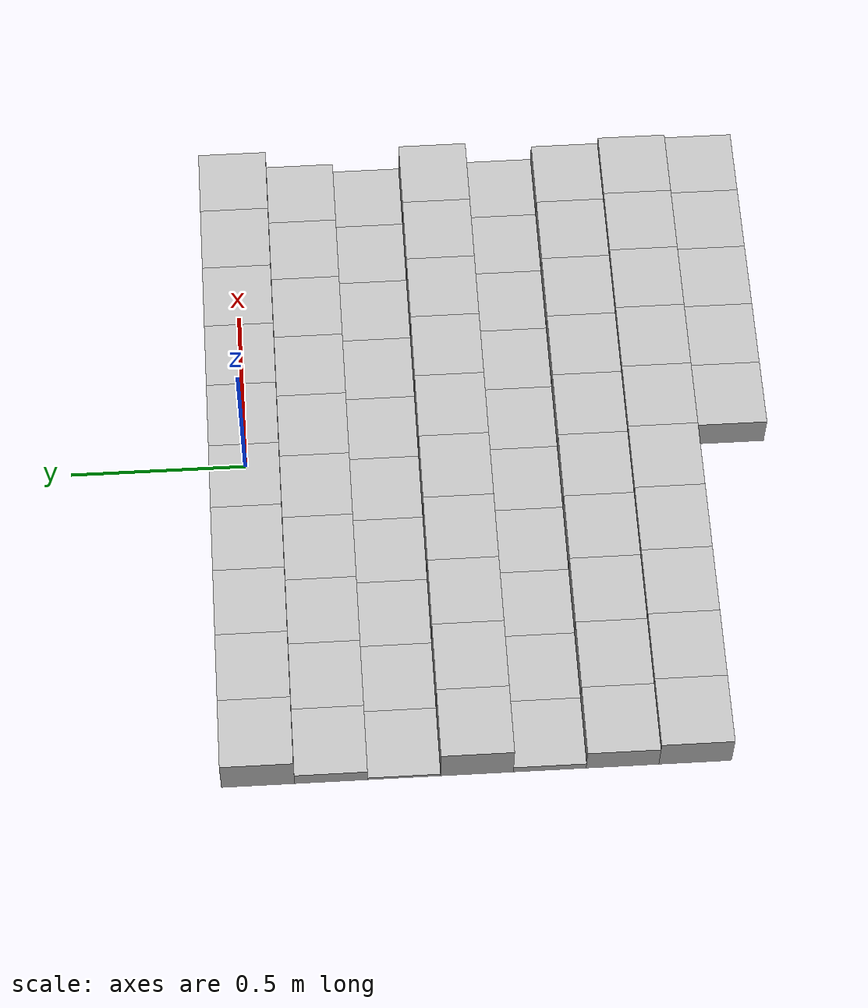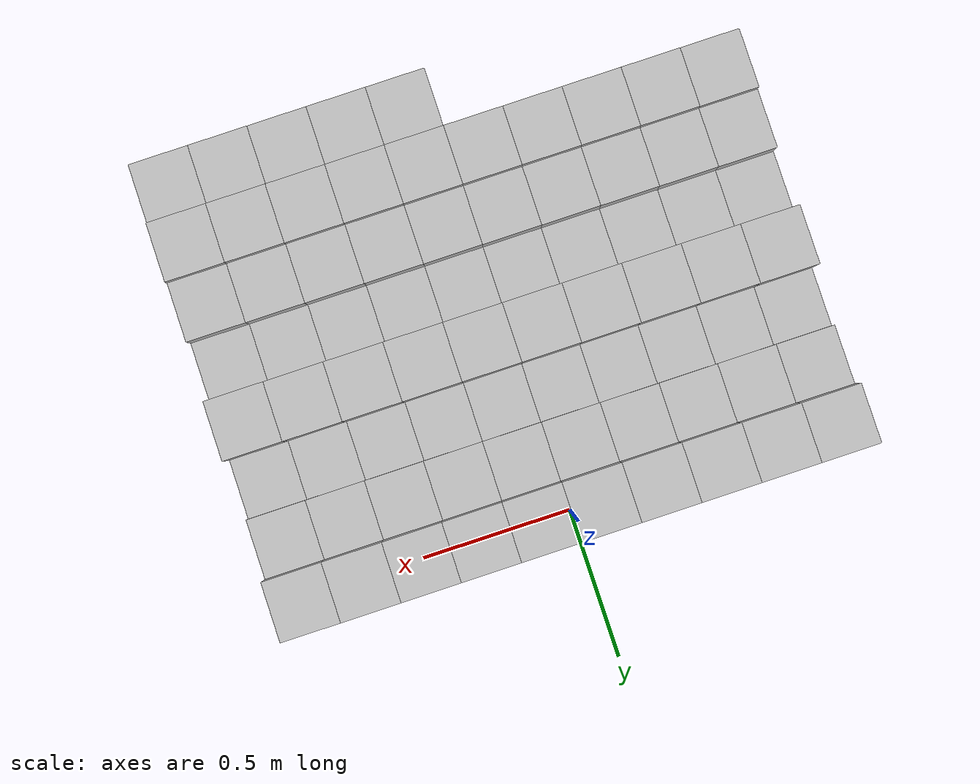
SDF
<sdf version="1.6">
 <model name="Terrain">
  <static>true</static>
  <link name="box_0_0">
   <pose>-0.9 0.0 0.0659234371377 0 0 0</pose>
   <inertial>
    <mass>1.0</mass>
    <inertia><ixx>0.0</ixx><ixy>0.0</ixy><ixz>0.0</ixz><iyy>0.0</iyy><iyz>0.0</iyz><izz>0.0</izz></inertia>
   </inertial>
   <collision name="collision"><geometry><box><size>0.2 0.2 0.131846874275</size></box></geometry></collision>
   <visual name="visual"><geometry><box><size>0.2 0.2 0.131846874275</size></box></geometry></visual>
  </link>
  <link name="box_0_1">
   <pose>-0.7 0.0 0.0659234371377 0 0 0</pose>
   <inertial>
    <mass>1.0</mass>
    <inertia><ixx>0.0</ixx><ixy>0.0</ixy><ixz>0.0</ixz><iyy>0.0</iyy><iyz>0.0</iyz><izz>0.0</izz></inertia>
   </inertial>
   <collision name="collision"><geometry><box><size>0.2 0.2 0.131846874275</size></box></geometry></collision>
   <visual name="visual"><geometry><box><size>0.2 0.2 0.131846874275</size></box></geometry></visual>
  </link>
  <link name="box_0_2">
   <pose>-0.5 0.0 0.0659234371377 0 0 0</pose>
   <inertial>
    <mass>1.0</mass>
    <inertia><ixx>0.0</ixx><ixy>0.0</ixy><ixz>0.0</ixz><iyy>0.0</iyy><iyz>0.0</iyz><izz>0.0</izz></inertia>
   </inertial>
   <collision name="collision"><geometry><box><size>0.2 0.2 0.131846874275</size></box></geometry></collision>
   <visual name="visual"><geometry><box><size>0.2 0.2 0.131846874275</size></box></geometry></visual>
  </link>
  <link name="box_0_3">
   <pose>-0.3 0.0 0.0659234371377 0 0 0</pose>
   <inertial>
    <mass>1.0</mass>
    <inertia><ixx>0.0</ixx><ixy>0.0</ixy><ixz>0.0</ixz><iyy>0.0</iyy><iyz>0.0</iyz><izz>0.0</izz></inertia>
   </inertial>
   <collision name="collision"><geometry><box><size>0.2 0.2 0.131846874275</size></box></geometry></collision>
   <visual name="visual"><geometry><box><size>0.2 0.2 0.131846874275</size></box></geometry></visual>
  </link>
  <link name="box_0_4">
   <pose>-0.1 0.0 0.0659234371377 0 0 0</pose>
   <inertial>
    <mass>1.0</mass>
    <inertia><ixx>0.0</ixx><ixy>0.0</ixy><ixz>0.0</ixz><iyy>0.0</iyy><iyz>0.0</iyz><izz>0.0</izz></inertia>
   </inertial>
   <collision name="collision"><geometry><box><size>0.2 0.2 0.131846874275</size></box></geometry></collision>
   <visual name="visual"><geometry><box><size>0.2 0.2 0.131846874275</size></box></geometry></visual>
  </link>
  <link name="box_0_5">
   <pose>0.1 0.0 0.0659234371377 0 0 0</pose>
   <inertial>
    <mass>1.0</mass>
    <inertia><ixx>0.0</ixx><ixy>0.0</ixy><ixz>0.0</ixz><iyy>0.0</iyy><iyz>0.0</iyz><izz>0.0</izz></inertia>
   </inertial>
   <collision name="collision"><geometry><box><size>0.2 0.2 0.131846874275</size></box></geometry></collision>
   <visual name="visual"><geometry><box><size>0.2 0.2 0.131846874275</size></box></geometry></visual>
  </link>
  <link name="box_0_6">
   <pose>0.3 0.0 0.0659234371377 0 0 0</pose>
   <inertial>
    <mass>1.0</mass>
    <inertia><ixx>0.0</ixx><ixy>0.0</ixy><ixz>0.0</ixz><iyy>0.0</iyy><iyz>0.0</iyz><izz>0.0</izz></inertia>
   </inertial>
   <collision name="collision"><geometry><box><size>0.2 0.2 0.131846874275</size></box></geometry></collision>
   <visual name="visual"><geometry><box><size>0.2 0.2 0.131846874275</size></box></geometry></visual>
  </link>
  <link name="box_0_7">
   <pose>0.5 0.0 0.0659234371377 0 0 0</pose>
   <inertial>
    <mass>1.0</mass>
    <inertia><ixx>0.0</ixx><ixy>0.0</ixy><ixz>0.0</ixz><iyy>0.0</iyy><iyz>0.0</iyz><izz>0.0</izz></inertia>
   </inertial>
   <collision name="collision"><geometry><box><size>0.2 0.2 0.131846874275</size></box></geometry></collision>
   <visual name="visual"><geometry><box><size>0.2 0.2 0.131846874275</size></box></geometry></visual>
  </link>
  <link name="box_0_8">
   <pose>0.7 0.0 0.0659234371377 0 0 0</pose>
   <inertial>
    <mass>1.0</mass>
    <inertia><ixx>0.0</ixx><ixy>0.0</ixy><ixz>0.0</ixz><iyy>0.0</iyy><iyz>0.0</iyz><izz>0.0</izz></inertia>
   </inertial>
   <collision name="collision"><geometry><box><size>0.2 0.2 0.131846874275</size></box></geometry></collision>
   <visual name="visual"><geometry><box><size>0.2 0.2 0.131846874275</size></box></geometry></visual>
  </link>
  <link name="box_0_9">
   <pose>0.9 0.0 0.0659234371377 0 0 0</pose>
   <inertial>
    <mass>1.0</mass>
    <inertia><ixx>0.0</ixx><ixy>0.0</ixy><ixz>0.0</ixz><iyy>0.0</iyy><iyz>0.0</iyz><izz>0.0</izz></inertia>
   </inertial>
   <collision name="collision"><geometry><box><size>0.2 0.2 0.131846874275</size></box></geometry></collision>
   <visual name="visual"><geometry><box><size>0.2 0.2 0.131846874275</size></box></geometry></visual>
  </link>
  <link name="box_1_0">
   <pose>-0.9 -0.2 0.0256447569967 0 0 0</pose>
   <inertial>
    <mass>1.0</mass>
    <inertia><ixx>0.0</ixx><ixy>0.0</ixy><ixz>0.0</ixz><iyy>0.0</iyy><iyz>0.0</iyz><izz>0.0</izz></inertia>
   </inertial>
   <collision name="collision"><geometry><box><size>0.2 0.2 0.0512895139934</size></box></geometry></collision>
   <visual name="visual"><geometry><box><size>0.2 0.2 0.0512895139934</size></box></geometry></visual>
  </link>
  <link name="box_1_1">
   <pose>-0.7 -0.2 0.0256447569967 0 0 0</pose>
   <inertial>
    <mass>1.0</mass>
    <inertia><ixx>0.0</ixx><ixy>0.0</ixy><ixz>0.0</ixz><iyy>0.0</iyy><iyz>0.0</iyz><izz>0.0</izz></inertia>
   </inertial>
   <collision name="collision"><geometry><box><size>0.2 0.2 0.0512895139934</size></box></geometry></collision>
   <visual name="visual"><geometry><box><size>0.2 0.2 0.0512895139934</size></box></geometry></visual>
  </link>
  <link name="box_1_2">
   <pose>-0.5 -0.2 0.0256447569967 0 0 0</pose>
   <inertial>
    <mass>1.0</mass>
    <inertia><ixx>0.0</ixx><ixy>0.0</ixy><ixz>0.0</ixz><iyy>0.0</iyy><iyz>0.0</iyz><izz>0.0</izz></inertia>
   </inertial>
   <collision name="collision"><geometry><box><size>0.2 0.2 0.0512895139934</size></box></geometry></collision>
   <visual name="visual"><geometry><box><size>0.2 0.2 0.0512895139934</size></box></geometry></visual>
  </link>
  <link name="box_1_3">
   <pose>-0.3 -0.2 0.0256447569967 0 0 0</pose>
   <inertial>
    <mass>1.0</mass>
    <inertia><ixx>0.0</ixx><ixy>0.0</ixy><ixz>0.0</ixz><iyy>0.0</iyy><iyz>0.0</iyz><izz>0.0</izz></inertia>
   </inertial>
   <collision name="collision"><geometry><box><size>0.2 0.2 0.0512895139934</size></box></geometry></collision>
   <visual name="visual"><geometry><box><size>0.2 0.2 0.0512895139934</size></box></geometry></visual>
  </link>
  <link name="box_1_4">
   <pose>-0.1 -0.2 0.0256447569967 0 0 0</pose>
   <inertial>
    <mass>1.0</mass>
    <inertia><ixx>0.0</ixx><ixy>0.0</ixy><ixz>0.0</ixz><iyy>0.0</iyy><iyz>0.0</iyz><izz>0.0</izz></inertia>
   </inertial>
   <collision name="collision"><geometry><box><size>0.2 0.2 0.0512895139934</size></box></geometry></collision>
   <visual name="visual"><geometry><box><size>0.2 0.2 0.0512895139934</size></box></geometry></visual>
  </link>
  <link name="box_1_5">
   <pose>0.1 -0.2 0.0256447569967 0 0 0</pose>
   <inertial>
    <mass>1.0</mass>
    <inertia><ixx>0.0</ixx><ixy>0.0</ixy><ixz>0.0</ixz><iyy>0.0</iyy><iyz>0.0</iyz><izz>0.0</izz></inertia>
   </inertial>
   <collision name="collision"><geometry><box><size>0.2 0.2 0.0512895139934</size></box></geometry></collision>
   <visual name="visual"><geometry><box><size>0.2 0.2 0.0512895139934</size></box></geometry></visual>
  </link>
  <link name="box_1_6">
   <pose>0.3 -0.2 0.0256447569967 0 0 0</pose>
   <inertial>
    <mass>1.0</mass>
    <inertia><ixx>0.0</ixx><ixy>0.0</ixy><ixz>0.0</ixz><iyy>0.0</iyy><iyz>0.0</iyz><izz>0.0</izz></inertia>
   </inertial>
   <collision name="collision"><geometry><box><size>0.2 0.2 0.0512895139934</size></box></geometry></collision>
   <visual name="visual"><geometry><box><size>0.2 0.2 0.0512895139934</size></box></geometry></visual>
  </link>
  <link name="box_1_7">
   <pose>0.5 -0.2 0.0256447569967 0 0 0</pose>
   <inertial>
    <mass>1.0</mass>
    <inertia><ixx>0.0</ixx><ixy>0.0</ixy><ixz>0.0</ixz><iyy>0.0</iyy><iyz>0.0</iyz><izz>0.0</izz></inertia>
   </inertial>
   <collision name="collision"><geometry><box><size>0.2 0.2 0.0512895139934</size></box></geometry></collision>
   <visual name="visual"><geometry><box><size>0.2 0.2 0.0512895139934</size></box></geometry></visual>
  </link>
  <link name="box_1_8">
   <pose>0.7 -0.2 0.0256447569967 0 0 0</pose>
   <inertial>
    <mass>1.0</mass>
    <inertia><ixx>0.0</ixx><ixy>0.0</ixy><ixz>0.0</ixz><iyy>0.0</iyy><iyz>0.0</iyz><izz>0.0</izz></inertia>
   </inertial>
   <collision name="collision"><geometry><box><size>0.2 0.2 0.0512895139934</size></box></geometry></collision>
   <visual name="visual"><geometry><box><size>0.2 0.2 0.0512895139934</size></box></geometry></visual>
  </link>
  <link name="box_1_9">
   <pose>0.9 -0.2 0.0256447569967 0 0 0</pose>
   <inertial>
    <mass>1.0</mass>
    <inertia><ixx>0.0</ixx><ixy>0.0</ixy><ixz>0.0</ixz><iyy>0.0</iyy><iyz>0.0</iyz><izz>0.0</izz></inertia>
   </inertial>
   <collision name="collision"><geometry><box><size>0.2 0.2 0.0512895139934</size></box></geometry></collision>
   <visual name="visual"><geometry><box><size>0.2 0.2 0.0512895139934</size></box></geometry></visual>
  </link>
  <link name="box_2_0">
   <pose>-0.9 -0.4 0.0053083939755 0 0 0</pose>
   <inertial>
    <mass>1.0</mass>
    <inertia><ixx>0.0</ixx><ixy>0.0</ixy><ixz>0.0</ixz><iyy>0.0</iyy><iyz>0.0</iyz><izz>0.0</izz></inertia>
   </inertial>
   <collision name="collision"><geometry><box><size>0.2 0.2 0.010616787951</size></box></geometry></collision>
   <visual name="visual"><geometry><box><size>0.2 0.2 0.010616787951</size></box></geometry></visual>
  </link>
  <link name="box_2_1">
   <pose>-0.7 -0.4 0.0053083939755 0 0 0</pose>
   <inertial>
    <mass>1.0</mass>
    <inertia><ixx>0.0</ixx><ixy>0.0</ixy><ixz>0.0</ixz><iyy>0.0</iyy><iyz>0.0</iyz><izz>0.0</izz></inertia>
   </inertial>
   <collision name="collision"><geometry><box><size>0.2 0.2 0.010616787951</size></box></geometry></collision>
   <visual name="visual"><geometry><box><size>0.2 0.2 0.010616787951</size></box></geometry></visual>
  </link>
  <link name="box_2_2">
   <pose>-0.5 -0.4 0.0053083939755 0 0 0</pose>
   <inertial>
    <mass>1.0</mass>
    <inertia><ixx>0.0</ixx><ixy>0.0</ixy><ixz>0.0</ixz><iyy>0.0</iyy><iyz>0.0</iyz><izz>0.0</izz></inertia>
   </inertial>
   <collision name="collision"><geometry><box><size>0.2 0.2 0.010616787951</size></box></geometry></collision>
   <visual name="visual"><geometry><box><size>0.2 0.2 0.010616787951</size></box></geometry></visual>
  </link>
  <link name="box_2_3">
   <pose>-0.3 -0.4 0.0053083939755 0 0 0</pose>
   <inertial>
    <mass>1.0</mass>
    <inertia><ixx>0.0</ixx><ixy>0.0</ixy><ixz>0.0</ixz><iyy>0.0</iyy><iyz>0.0</iyz><izz>0.0</izz></inertia>
   </inertial>
   <collision name="collision"><geometry><box><size>0.2 0.2 0.010616787951</size></box></geometry></collision>
   <visual name="visual"><geometry><box><size>0.2 0.2 0.010616787951</size></box></geometry></visual>
  </link>
  <link name="box_2_4">
   <pose>-0.1 -0.4 0.0053083939755 0 0 0</pose>
   <inertial>
    <mass>1.0</mass>
    <inertia><ixx>0.0</ixx><ixy>0.0</ixy><ixz>0.0</ixz><iyy>0.0</iyy><iyz>0.0</iyz><izz>0.0</izz></inertia>
   </inertial>
   <collision name="collision"><geometry><box><size>0.2 0.2 0.010616787951</size></box></geometry></collision>
   <visual name="visual"><geometry><box><size>0.2 0.2 0.010616787951</size></box></geometry></visual>
  </link>
  <link name="box_2_5">
   <pose>0.1 -0.4 0.0053083939755 0 0 0</pose>
   <inertial>
    <mass>1.0</mass>
    <inertia><ixx>0.0</ixx><ixy>0.0</ixy><ixz>0.0</ixz><iyy>0.0</iyy><iyz>0.0</iyz><izz>0.0</izz></inertia>
   </inertial>
   <collision name="collision"><geometry><box><size>0.2 0.2 0.010616787951</size></box></geometry></collision>
   <visual name="visual"><geometry><box><size>0.2 0.2 0.010616787951</size></box></geometry></visual>
  </link>
  <link name="box_2_6">
   <pose>0.3 -0.4 0.0053083939755 0 0 0</pose>
   <inertial>
    <mass>1.0</mass>
    <inertia><ixx>0.0</ixx><ixy>0.0</ixy><ixz>0.0</ixz><iyy>0.0</iyy><iyz>0.0</iyz><izz>0.0</izz></inertia>
   </inertial>
   <collision name="collision"><geometry><box><size>0.2 0.2 0.010616787951</size></box></geometry></collision>
   <visual name="visual"><geometry><box><size>0.2 0.2 0.010616787951</size></box></geometry></visual>
  </link>
  <link name="box_2_7">
   <pose>0.5 -0.4 0.0053083939755 0 0 0</pose>
   <inertial>
    <mass>1.0</mass>
    <inertia><ixx>0.0</ixx><ixy>0.0</ixy><ixz>0.0</ixz><iyy>0.0</iyy><iyz>0.0</iyz><izz>0.0</izz></inertia>
   </inertial>
   <collision name="collision"><geometry><box><size>0.2 0.2 0.010616787951</size></box></geometry></collision>
   <visual name="visual"><geometry><box><size>0.2 0.2 0.010616787951</size></box></geometry></visual>
  </link>
  <link name="box_2_8">
   <pose>0.7 -0.4 0.0053083939755 0 0 0</pose>
   <inertial>
    <mass>1.0</mass>
    <inertia><ixx>0.0</ixx><ixy>0.0</ixy><ixz>0.0</ixz><iyy>0.0</iyy><iyz>0.0</iyz><izz>0.0</izz></inertia>
   </inertial>
   <collision name="collision"><geometry><box><size>0.2 0.2 0.010616787951</size></box></geometry></collision>
   <visual name="visual"><geometry><box><size>0.2 0.2 0.010616787951</size></box></geometry></visual>
  </link>
  <link name="box_2_9">
   <pose>0.9 -0.4 0.0053083939755 0 0 0</pose>
   <inertial>
    <mass>1.0</mass>
    <inertia><ixx>0.0</ixx><ixy>0.0</ixy><ixz>0.0</ixz><iyy>0.0</iyy><iyz>0.0</iyz><izz>0.0</izz></inertia>
   </inertial>
   <collision name="collision"><geometry><box><size>0.2 0.2 0.010616787951</size></box></geometry></collision>
   <visual name="visual"><geometry><box><size>0.2 0.2 0.010616787951</size></box></geometry></visual>
  </link>
  <link name="box_3_0">
   <pose>-0.9 -0.6 0.0641173235638 0 0 0</pose>
   <inertial>
    <mass>1.0</mass>
    <inertia><ixx>0.0</ixx><ixy>0.0</ixy><ixz>0.0</ixz><iyy>0.0</iyy><iyz>0.0</iyz><izz>0.0</izz></inertia>
   </inertial>
   <collision name="collision"><geometry><box><size>0.2 0.2 0.128234647128</size></box></geometry></collision>
   <visual name="visual"><geometry><box><size>0.2 0.2 0.128234647128</size></box></geometry></visual>
  </link>
  <link name="box_3_1">
   <pose>-0.7 -0.6 0.0641173235638 0 0 0</pose>
   <inertial>
    <mass>1.0</mass>
    <inertia><ixx>0.0</ixx><ixy>0.0</ixy><ixz>0.0</ixz><iyy>0.0</iyy><iyz>0.0</iyz><izz>0.0</izz></inertia>
   </inertial>
   <collision name="collision"><geometry><box><size>0.2 0.2 0.128234647128</size></box></geometry></collision>
   <visual name="visual"><geometry><box><size>0.2 0.2 0.128234647128</size></box></geometry></visual>
  </link>
  <link name="box_3_2">
   <pose>-0.5 -0.6 0.0641173235638 0 0 0</pose>
   <inertial>
    <mass>1.0</mass>
    <inertia><ixx>0.0</ixx><ixy>0.0</ixy><ixz>0.0</ixz><iyy>0.0</iyy><iyz>0.0</iyz><izz>0.0</izz></inertia>
   </inertial>
   <collision name="collision"><geometry><box><size>0.2 0.2 0.128234647128</size></box></geometry></collision>
   <visual name="visual"><geometry><box><size>0.2 0.2 0.128234647128</size></box></geometry></visual>
  </link>
  <link name="box_3_3">
   <pose>-0.3 -0.6 0.0641173235638 0 0 0</pose>
   <inertial>
    <mass>1.0</mass>
    <inertia><ixx>0.0</ixx><ixy>0.0</ixy><ixz>0.0</ixz><iyy>0.0</iyy><iyz>0.0</iyz><izz>0.0</izz></inertia>
   </inertial>
   <collision name="collision"><geometry><box><size>0.2 0.2 0.128234647128</size></box></geometry></collision>
   <visual name="visual"><geometry><box><size>0.2 0.2 0.128234647128</size></box></geometry></visual>
  </link>
  <link name="box_3_4">
   <pose>-0.1 -0.6 0.0641173235638 0 0 0</pose>
   <inertial>
    <mass>1.0</mass>
    <inertia><ixx>0.0</ixx><ixy>0.0</ixy><ixz>0.0</ixz><iyy>0.0</iyy><iyz>0.0</iyz><izz>0.0</izz></inertia>
   </inertial>
   <collision name="collision"><geometry><box><size>0.2 0.2 0.128234647128</size></box></geometry></collision>
   <visual name="visual"><geometry><box><size>0.2 0.2 0.128234647128</size></box></geometry></visual>
  </link>
  <link name="box_3_5">
   <pose>0.1 -0.6 0.0641173235638 0 0 0</pose>
   <inertial>
    <mass>1.0</mass>
    <inertia><ixx>0.0</ixx><ixy>0.0</ixy><ixz>0.0</ixz><iyy>0.0</iyy><iyz>0.0</iyz><izz>0.0</izz></inertia>
   </inertial>
   <collision name="collision"><geometry><box><size>0.2 0.2 0.128234647128</size></box></geometry></collision>
   <visual name="visual"><geometry><box><size>0.2 0.2 0.128234647128</size></box></geometry></visual>
  </link>
  <link name="box_3_6">
   <pose>0.3 -0.6 0.0641173235638 0 0 0</pose>
   <inertial>
    <mass>1.0</mass>
    <inertia><ixx>0.0</ixx><ixy>0.0</ixy><ixz>0.0</ixz><iyy>0.0</iyy><iyz>0.0</iyz><izz>0.0</izz></inertia>
   </inertial>
   <collision name="collision"><geometry><box><size>0.2 0.2 0.128234647128</size></box></geometry></collision>
   <visual name="visual"><geometry><box><size>0.2 0.2 0.128234647128</size></box></geometry></visual>
  </link>
  <link name="box_3_7">
   <pose>0.5 -0.6 0.0641173235638 0 0 0</pose>
   <inertial>
    <mass>1.0</mass>
    <inertia><ixx>0.0</ixx><ixy>0.0</ixy><ixz>0.0</ixz><iyy>0.0</iyy><iyz>0.0</iyz><izz>0.0</izz></inertia>
   </inertial>
   <collision name="collision"><geometry><box><size>0.2 0.2 0.128234647128</size></box></geometry></collision>
   <visual name="visual"><geometry><box><size>0.2 0.2 0.128234647128</size></box></geometry></visual>
  </link>
  <link name="box_3_8">
   <pose>0.7 -0.6 0.0641173235638 0 0 0</pose>
   <inertial>
    <mass>1.0</mass>
    <inertia><ixx>0.0</ixx><ixy>0.0</ixy><ixz>0.0</ixz><iyy>0.0</iyy><iyz>0.0</iyz><izz>0.0</izz></inertia>
   </inertial>
   <collision name="collision"><geometry><box><size>0.2 0.2 0.128234647128</size></box></geometry></collision>
   <visual name="visual"><geometry><box><size>0.2 0.2 0.128234647128</size></box></geometry></visual>
  </link>
  <link name="box_3_9">
   <pose>0.9 -0.6 0.0641173235638 0 0 0</pose>
   <inertial>
    <mass>1.0</mass>
    <inertia><ixx>0.0</ixx><ixy>0.0</ixy><ixz>0.0</ixz><iyy>0.0</iyy><iyz>0.0</iyz><izz>0.0</izz></inertia>
   </inertial>
   <collision name="collision"><geometry><box><size>0.2 0.2 0.128234647128</size></box></geometry></collision>
   <visual name="visual"><geometry><box><size>0.2 0.2 0.128234647128</size></box></geometry></visual>
  </link>
  <link name="box_4_0">
   <pose>-0.9 -0.8 0.0137502038964 0 0 0</pose>
   <inertial>
    <mass>1.0</mass>
    <inertia><ixx>0.0</ixx><ixy>0.0</ixy><ixz>0.0</ixz><iyy>0.0</iyy><iyz>0.0</iyz><izz>0.0</izz></inertia>
   </inertial>
   <collision name="collision"><geometry><box><size>0.2 0.2 0.0275004077928</size></box></geometry></collision>
   <visual name="visual"><geometry><box><size>0.2 0.2 0.0275004077928</size></box></geometry></visual>
  </link>
  <link name="box_4_1">
   <pose>-0.7 -0.8 0.0137502038964 0 0 0</pose>
   <inertial>
    <mass>1.0</mass>
    <inertia><ixx>0.0</ixx><ixy>0.0</ixy><ixz>0.0</ixz><iyy>0.0</iyy><iyz>0.0</iyz><izz>0.0</izz></inertia>
   </inertial>
   <collision name="collision"><geometry><box><size>0.2 0.2 0.0275004077928</size></box></geometry></collision>
   <visual name="visual"><geometry><box><size>0.2 0.2 0.0275004077928</size></box></geometry></visual>
  </link>
  <link name="box_4_2">
   <pose>-0.5 -0.8 0.0137502038964 0 0 0</pose>
   <inertial>
    <mass>1.0</mass>
    <inertia><ixx>0.0</ixx><ixy>0.0</ixy><ixz>0.0</ixz><iyy>0.0</iyy><iyz>0.0</iyz><izz>0.0</izz></inertia>
   </inertial>
   <collision name="collision"><geometry><box><size>0.2 0.2 0.0275004077928</size></box></geometry></collision>
   <visual name="visual"><geometry><box><size>0.2 0.2 0.0275004077928</size></box></geometry></visual>
  </link>
  <link name="box_4_3">
   <pose>-0.3 -0.8 0.0137502038964 0 0 0</pose>
   <inertial>
    <mass>1.0</mass>
    <inertia><ixx>0.0</ixx><ixy>0.0</ixy><ixz>0.0</ixz><iyy>0.0</iyy><iyz>0.0</iyz><izz>0.0</izz></inertia>
   </inertial>
   <collision name="collision"><geometry><box><size>0.2 0.2 0.0275004077928</size></box></geometry></collision>
   <visual name="visual"><geometry><box><size>0.2 0.2 0.0275004077928</size></box></geometry></visual>
  </link>
  <link name="box_4_4">
   <pose>-0.1 -0.8 0.0137502038964 0 0 0</pose>
   <inertial>
    <mass>1.0</mass>
    <inertia><ixx>0.0</ixx><ixy>0.0</ixy><ixz>0.0</ixz><iyy>0.0</iyy><iyz>0.0</iyz><izz>0.0</izz></inertia>
   </inertial>
   <collision name="collision"><geometry><box><size>0.2 0.2 0.0275004077928</size></box></geometry></collision>
   <visual name="visual"><geometry><box><size>0.2 0.2 0.0275004077928</size></box></geometry></visual>
  </link>
  <link name="box_4_5">
   <pose>0.1 -0.8 0.0137502038964 0 0 0</pose>
   <inertial>
    <mass>1.0</mass>
    <inertia><ixx>0.0</ixx><ixy>0.0</ixy><ixz>0.0</ixz><iyy>0.0</iyy><iyz>0.0</iyz><izz>0.0</izz></inertia>
   </inertial>
   <collision name="collision"><geometry><box><size>0.2 0.2 0.0275004077928</size></box></geometry></collision>
   <visual name="visual"><geometry><box><size>0.2 0.2 0.0275004077928</size></box></geometry></visual>
  </link>
  <link name="box_4_6">
   <pose>0.3 -0.8 0.0137502038964 0 0 0</pose>
   <inertial>
    <mass>1.0</mass>
    <inertia><ixx>0.0</ixx><ixy>0.0</ixy><ixz>0.0</ixz><iyy>0.0</iyy><iyz>0.0</iyz><izz>0.0</izz></inertia>
   </inertial>
   <collision name="collision"><geometry><box><size>0.2 0.2 0.0275004077928</size></box></geometry></collision>
   <visual name="visual"><geometry><box><size>0.2 0.2 0.0275004077928</size></box></geometry></visual>
  </link>
  <link name="box_4_7">
   <pose>0.5 -0.8 0.0137502038964 0 0 0</pose>
   <inertial>
    <mass>1.0</mass>
    <inertia><ixx>0.0</ixx><ixy>0.0</ixy><ixz>0.0</ixz><iyy>0.0</iyy><iyz>0.0</iyz><izz>0.0</izz></inertia>
   </inertial>
   <collision name="collision"><geometry><box><size>0.2 0.2 0.0275004077928</size></box></geometry></collision>
   <visual name="visual"><geometry><box><size>0.2 0.2 0.0275004077928</size></box></geometry></visual>
  </link>
  <link name="box_4_8">
   <pose>0.7 -0.8 0.0137502038964 0 0 0</pose>
   <inertial>
    <mass>1.0</mass>
    <inertia><ixx>0.0</ixx><ixy>0.0</ixy><ixz>0.0</ixz><iyy>0.0</iyy><iyz>0.0</iyz><izz>0.0</izz></inertia>
   </inertial>
   <collision name="collision"><geometry><box><size>0.2 0.2 0.0275004077928</size></box></geometry></collision>
   <visual name="visual"><geometry><box><size>0.2 0.2 0.0275004077928</size></box></geometry></visual>
  </link>
  <link name="box_4_9">
   <pose>0.9 -0.8 0.0137502038964 0 0 0</pose>
   <inertial>
    <mass>1.0</mass>
    <inertia><ixx>0.0</ixx><ixy>0.0</ixy><ixz>0.0</ixz><iyy>0.0</iyy><iyz>0.0</iyz><izz>0.0</izz></inertia>
   </inertial>
   <collision name="collision"><geometry><box><size>0.2 0.2 0.0275004077928</size></box></geometry></collision>
   <visual name="visual"><geometry><box><size>0.2 0.2 0.0275004077928</size></box></geometry></visual>
  </link>
  <link name="box_5_0">
   <pose>-0.9 -1.0 0.0473586883652 0 0 0</pose>
   <inertial>
    <mass>1.0</mass>
    <inertia><ixx>0.0</ixx><ixy>0.0</ixy><ixz>0.0</ixz><iyy>0.0</iyy><iyz>0.0</iyz><izz>0.0</izz></inertia>
   </inertial>
   <collision name="collision"><geometry><box><size>0.2 0.2 0.0947173767304</size></box></geometry></collision>
   <visual name="visual"><geometry><box><size>0.2 0.2 0.0947173767304</size></box></geometry></visual>
  </link>
  <link name="box_5_1">
   <pose>-0.7 -1.0 0.0473586883652 0 0 0</pose>
   <inertial>
    <mass>1.0</mass>
    <inertia><ixx>0.0</ixx><ixy>0.0</ixy><ixz>0.0</ixz><iyy>0.0</iyy><iyz>0.0</iyz><izz>0.0</izz></inertia>
   </inertial>
   <collision name="collision"><geometry><box><size>0.2 0.2 0.0947173767304</size></box></geometry></collision>
   <visual name="visual"><geometry><box><size>0.2 0.2 0.0947173767304</size></box></geometry></visual>
  </link>
  <link name="box_5_2">
   <pose>-0.5 -1.0 0.0473586883652 0 0 0</pose>
   <inertial>
    <mass>1.0</mass>
    <inertia><ixx>0.0</ixx><ixy>0.0</ixy><ixz>0.0</ixz><iyy>0.0</iyy><iyz>0.0</iyz><izz>0.0</izz></inertia>
   </inertial>
   <collision name="collision"><geometry><box><size>0.2 0.2 0.0947173767304</size></box></geometry></collision>
   <visual name="visual"><geometry><box><size>0.2 0.2 0.0947173767304</size></box></geometry></visual>
  </link>
  <link name="box_5_3">
   <pose>-0.3 -1.0 0.0473586883652 0 0 0</pose>
   <inertial>
    <mass>1.0</mass>
    <inertia><ixx>0.0</ixx><ixy>0.0</ixy><ixz>0.0</ixz><iyy>0.0</iyy><iyz>0.0</iyz><izz>0.0</izz></inertia>
   </inertial>
   <collision name="collision"><geometry><box><size>0.2 0.2 0.0947173767304</size></box></geometry></collision>
   <visual name="visual"><geometry><box><size>0.2 0.2 0.0947173767304</size></box></geometry></visual>
  </link>
  <link name="box_5_4">
   <pose>-0.1 -1.0 0.0473586883652 0 0 0</pose>
   <inertial>
    <mass>1.0</mass>
    <inertia><ixx>0.0</ixx><ixy>0.0</ixy><ixz>0.0</ixz><iyy>0.0</iyy><iyz>0.0</iyz><izz>0.0</izz></inertia>
   </inertial>
   <collision name="collision"><geometry><box><size>0.2 0.2 0.0947173767304</size></box></geometry></collision>
   <visual name="visual"><geometry><box><size>0.2 0.2 0.0947173767304</size></box></geometry></visual>
  </link>
  <link name="box_5_5">
   <pose>0.1 -1.0 0.0473586883652 0 0 0</pose>
   <inertial>
    <mass>1.0</mass>
    <inertia><ixx>0.0</ixx><ixy>0.0</ixy><ixz>0.0</ixz><iyy>0.0</iyy><iyz>0.0</iyz><izz>0.0</izz></inertia>
   </inertial>
   <collision name="collision"><geometry><box><size>0.2 0.2 0.0947173767304</size></box></geometry></collision>
   <visual name="visual"><geometry><box><size>0.2 0.2 0.0947173767304</size></box></geometry></visual>
  </link>
  <link name="box_5_6">
   <pose>0.3 -1.0 0.0473586883652 0 0 0</pose>
   <inertial>
    <mass>1.0</mass>
    <inertia><ixx>0.0</ixx><ixy>0.0</ixy><ixz>0.0</ixz><iyy>0.0</iyy><iyz>0.0</iyz><izz>0.0</izz></inertia>
   </inertial>
   <collision name="collision"><geometry><box><size>0.2 0.2 0.0947173767304</size></box></geometry></collision>
   <visual name="visual"><geometry><box><size>0.2 0.2 0.0947173767304</size></box></geometry></visual>
  </link>
  <link name="box_5_7">
   <pose>0.5 -1.0 0.0473586883652 0 0 0</pose>
   <inertial>
    <mass>1.0</mass>
    <inertia><ixx>0.0</ixx><ixy>0.0</ixy><ixz>0.0</ixz><iyy>0.0</iyy><iyz>0.0</iyz><izz>0.0</izz></inertia>
   </inertial>
   <collision name="collision"><geometry><box><size>0.2 0.2 0.0947173767304</size></box></geometry></collision>
   <visual name="visual"><geometry><box><size>0.2 0.2 0.0947173767304</size></box></geometry></visual>
  </link>
  <link name="box_5_8">
   <pose>0.7 -1.0 0.0473586883652 0 0 0</pose>
   <inertial>
    <mass>1.0</mass>
    <inertia><ixx>0.0</ixx><ixy>0.0</ixy><ixz>0.0</ixz><iyy>0.0</iyy><iyz>0.0</iyz><izz>0.0</izz></inertia>
   </inertial>
   <collision name="collision"><geometry><box><size>0.2 0.2 0.0947173767304</size></box></geometry></collision>
   <visual name="visual"><geometry><box><size>0.2 0.2 0.0947173767304</size></box></geometry></visual>
  </link>
  <link name="box_5_9">
   <pose>0.9 -1.0 0.0473586883652 0 0 0</pose>
   <inertial>
    <mass>1.0</mass>
    <inertia><ixx>0.0</ixx><ixy>0.0</ixy><ixz>0.0</ixz><iyy>0.0</iyy><iyz>0.0</iyz><izz>0.0</izz></inertia>
   </inertial>
   <collision name="collision"><geometry><box><size>0.2 0.2 0.0947173767304</size></box></geometry></collision>
   <visual name="visual"><geometry><box><size>0.2 0.2 0.0947173767304</size></box></geometry></visual>
  </link>
  <link name="box_6_0">
   <pose>-0.9 -1.2 0.0616717654161 0 0 0</pose>
   <inertial>
    <mass>1.0</mass>
    <inertia><ixx>0.0</ixx><ixy>0.0</ixy><ixz>0.0</ixz><iyy>0.0</iyy><iyz>0.0</iyz><izz>0.0</izz></inertia>
   </inertial>
   <collision name="collision"><geometry><box><size>0.2 0.2 0.123343530832</size></box></geometry></collision>
   <visual name="visual"><geometry><box><size>0.2 0.2 0.123343530832</size></box></geometry></visual>
  </link>
  <link name="box_6_1">
   <pose>-0.7 -1.2 0.0616717654161 0 0 0</pose>
   <inertial>
    <mass>1.0</mass>
    <inertia><ixx>0.0</ixx><ixy>0.0</ixy><ixz>0.0</ixz><iyy>0.0</iyy><iyz>0.0</iyz><izz>0.0</izz></inertia>
   </inertial>
   <collision name="collision"><geometry><box><size>0.2 0.2 0.123343530832</size></box></geometry></collision>
   <visual name="visual"><geometry><box><size>0.2 0.2 0.123343530832</size></box></geometry></visual>
  </link>
  <link name="box_6_2">
   <pose>-0.5 -1.2 0.0616717654161 0 0 0</pose>
   <inertial>
    <mass>1.0</mass>
    <inertia><ixx>0.0</ixx><ixy>0.0</ixy><ixz>0.0</ixz><iyy>0.0</iyy><iyz>0.0</iyz><izz>0.0</izz></inertia>
   </inertial>
   <collision name="collision"><geometry><box><size>0.2 0.2 0.123343530832</size></box></geometry></collision>
   <visual name="visual"><geometry><box><size>0.2 0.2 0.123343530832</size></box></geometry></visual>
  </link>
  <link name="box_6_3">
   <pose>-0.3 -1.2 0.0616717654161 0 0 0</pose>
   <inertial>
    <mass>1.0</mass>
    <inertia><ixx>0.0</ixx><ixy>0.0</ixy><ixz>0.0</ixz><iyy>0.0</iyy><iyz>0.0</iyz><izz>0.0</izz></inertia>
   </inertial>
   <collision name="collision"><geometry><box><size>0.2 0.2 0.123343530832</size></box></geometry></collision>
   <visual name="visual"><geometry><box><size>0.2 0.2 0.123343530832</size></box></geometry></visual>
  </link>
  <link name="box_6_4">
   <pose>-0.1 -1.2 0.0616717654161 0 0 0</pose>
   <inertial>
    <mass>1.0</mass>
    <inertia><ixx>0.0</ixx><ixy>0.0</ixy><ixz>0.0</ixz><iyy>0.0</iyy><iyz>0.0</iyz><izz>0.0</izz></inertia>
   </inertial>
   <collision name="collision"><geometry><box><size>0.2 0.2 0.123343530832</size></box></geometry></collision>
   <visual name="visual"><geometry><box><size>0.2 0.2 0.123343530832</size></box></geometry></visual>
  </link>
  <link name="box_6_5">
   <pose>0.1 -1.2 0.0616717654161 0 0 0</pose>
   <inertial>
    <mass>1.0</mass>
    <inertia><ixx>0.0</ixx><ixy>0.0</ixy><ixz>0.0</ixz><iyy>0.0</iyy><iyz>0.0</iyz><izz>0.0</izz></inertia>
   </inertial>
   <collision name="collision"><geometry><box><size>0.2 0.2 0.123343530832</size></box></geometry></collision>
   <visual name="visual"><geometry><box><size>0.2 0.2 0.123343530832</size></box></geometry></visual>
  </link>
  <link name="box_6_6">
   <pose>0.3 -1.2 0.0616717654161 0 0 0</pose>
   <inertial>
    <mass>1.0</mass>
    <inertia><ixx>0.0</ixx><ixy>0.0</ixy><ixz>0.0</ixz><iyy>0.0</iyy><iyz>0.0</iyz><izz>0.0</izz></inertia>
   </inertial>
   <collision name="collision"><geometry><box><size>0.2 0.2 0.123343530832</size></box></geometry></collision>
   <visual name="visual"><geometry><box><size>0.2 0.2 0.123343530832</size></box></geometry></visual>
  </link>
  <link name="box_6_7">
   <pose>0.5 -1.2 0.0616717654161 0 0 0</pose>
   <inertial>
    <mass>1.0</mass>
    <inertia><ixx>0.0</ixx><ixy>0.0</ixy><ixz>0.0</ixz><iyy>0.0</iyy><iyz>0.0</iyz><izz>0.0</izz></inertia>
   </inertial>
   <collision name="collision"><geometry><box><size>0.2 0.2 0.123343530832</size></box></geometry></collision>
   <visual name="visual"><geometry><box><size>0.2 0.2 0.123343530832</size></box></geometry></visual>
  </link>
  <link name="box_6_8">
   <pose>0.7 -1.2 0.0616717654161 0 0 0</pose>
   <inertial>
    <mass>1.0</mass>
    <inertia><ixx>0.0</ixx><ixy>0.0</ixy><ixz>0.0</ixz><iyy>0.0</iyy><iyz>0.0</iyz><izz>0.0</izz></inertia>
   </inertial>
   <collision name="collision"><geometry><box><size>0.2 0.2 0.123343530832</size></box></geometry></collision>
   <visual name="visual"><geometry><box><size>0.2 0.2 0.123343530832</size></box></geometry></visual>
  </link>
  <link name="box_6_9">
   <pose>0.9 -1.2 0.0616717654161 0 0 0</pose>
   <inertial>
    <mass>1.0</mass>
    <inertia><ixx>0.0</ixx><ixy>0.0</ixy><ixz>0.0</ixz><iyy>0.0</iyy><iyz>0.0</iyz><izz>0.0</izz></inertia>
   </inertial>
   <collision name="collision"><geometry><box><size>0.2 0.2 0.123343530832</size></box></geometry></collision>
   <visual name="visual"><geometry><box><size>0.2 0.2 0.123343530832</size></box></geometry></visual>
  </link>
  <link name="box_7_5">
   <pose>0.1 -1.4 0.0542363194159 0 0 0</pose>
   <inertial>
    <mass>1.0</mass>
    <inertia><ixx>0.0</ixx><ixy>0.0</ixy><ixz>0.0</ixz><iyy>0.0</iyy><iyz>0.0</iyz><izz>0.0</izz></inertia>
   </inertial>
   <collision name="collision"><geometry><box><size>0.2 0.2 0.108472638832</size></box></geometry></collision>
   <visual name="visual"><geometry><box><size>0.2 0.2 0.108472638832</size></box></geometry></visual>
  </link>
  <link name="box_7_6">
   <pose>0.3 -1.4 0.0542363194159 0 0 0</pose>
   <inertial>
    <mass>1.0</mass>
    <inertia><ixx>0.0</ixx><ixy>0.0</ixy><ixz>0.0</ixz><iyy>0.0</iyy><iyz>0.0</iyz><izz>0.0</izz></inertia>
   </inertial>
   <collision name="collision"><geometry><box><size>0.2 0.2 0.108472638832</size></box></geometry></collision>
   <visual name="visual"><geometry><box><size>0.2 0.2 0.108472638832</size></box></geometry></visual>
  </link>
  <link name="box_7_7">
   <pose>0.5 -1.4 0.0542363194159 0 0 0</pose>
   <inertial>
    <mass>1.0</mass>
    <inertia><ixx>0.0</ixx><ixy>0.0</ixy><ixz>0.0</ixz><iyy>0.0</iyy><iyz>0.0</iyz><izz>0.0</izz></inertia>
   </inertial>
   <collision name="collision"><geometry><box><size>0.2 0.2 0.108472638832</size></box></geometry></collision>
   <visual name="visual"><geometry><box><size>0.2 0.2 0.108472638832</size></box></geometry></visual>
  </link>
  <link name="box_7_8">
   <pose>0.7 -1.4 0.0542363194159 0 0 0</pose>
   <inertial>
    <mass>1.0</mass>
    <inertia><ixx>0.0</ixx><ixy>0.0</ixy><ixz>0.0</ixz><iyy>0.0</iyy><iyz>0.0</iyz><izz>0.0</izz></inertia>
   </inertial>
   <collision name="collision"><geometry><box><size>0.2 0.2 0.108472638832</size></box></geometry></collision>
   <visual name="visual"><geometry><box><size>0.2 0.2 0.108472638832</size></box></geometry></visual>
  </link>
  <link name="box_7_9">
   <pose>0.9 -1.4 0.0542363194159 0 0 0</pose>
   <inertial>
    <mass>1.0</mass>
    <inertia><ixx>0.0</ixx><ixy>0.0</ixy><ixz>0.0</ixz><iyy>0.0</iyy><iyz>0.0</iyz><izz>0.0</izz></inertia>
   </inertial>
   <collision name="collision"><geometry><box><size>0.2 0.2 0.108472638832</size></box></geometry></collision>
   <visual name="visual"><geometry><box><size>0.2 0.2 0.108472638832</size></box></geometry></visual>
  </link>
 </model>
</sdf>
